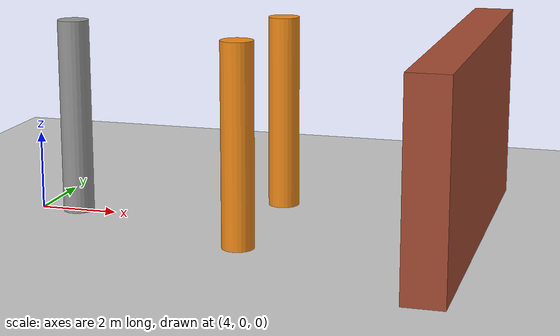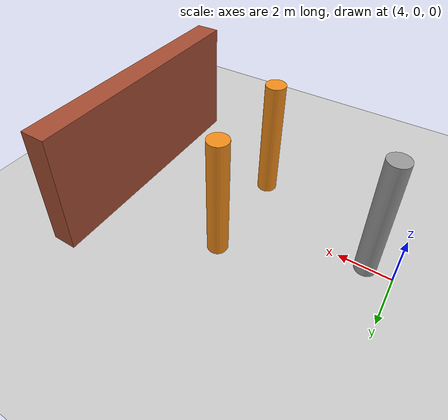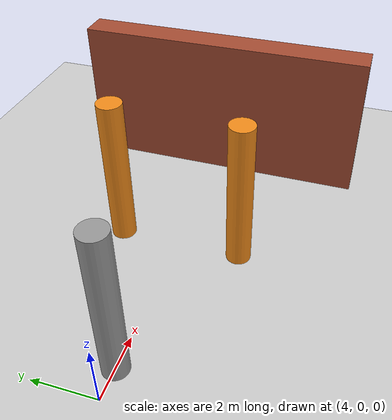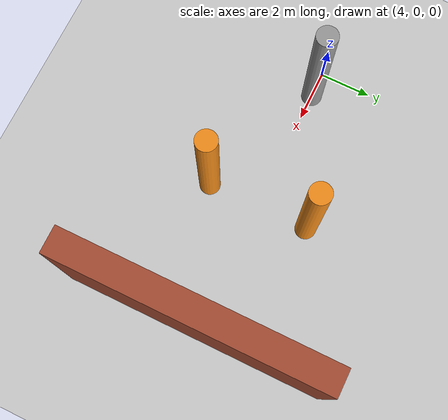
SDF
<?xml version="1.0" ?>
<sdf version="1.6">
  <world name="payload_obstacle_course">
    <!-- Scene settings: crisp lighting with no shadow aliasing or grid artifacts -->
    <scene>
      <ambient>0.6 0.6 0.6 1</ambient>
      <background>0.7 0.7 0.7 1</background>
      <shadows>false</shadows>
      <grid>false</grid>
    </scene>

    <!-- Global light source -->
    <include>
      <uri>model://sun</uri>
    </include>

    <!-- Ground & Asphalt runway plane (matches reference environment) -->
    <include>
      <uri>model://ground_plane</uri>
    </include>
    <include>
      <uri>model://asphalt_plane</uri>
    </include>

    <!-- Physics settings matched to PX4 SITL requirements (250Hz ODE) -->
    <physics name='default_physics' default='0' type='ode'>
      <gravity>0 0 -9.8066</gravity>
      <ode>
        <solver>
          <type>quick</type>
          <iters>10</iters>
          <sor>1.3</sor>
          <use_dynamic_moi_rescaling>0</use_dynamic_moi_rescaling>
        </solver>
        <constraints>
          <cfm>0</cfm>
          <erp>0.2</erp>
          <contact_max_correcting_vel>100</contact_max_correcting_vel>
          <contact_surface_layer>0.001</contact_surface_layer>
        </constraints>
      </ode>
      <max_step_size>0.004</max_step_size>
      <real_time_factor>1</real_time_factor>
      <real_time_update_rate>250</real_time_update_rate>
      <magnetic_field>6.0e-6 2.3e-5 -4.2e-5</magnetic_field>
    </physics>

    <!-- Obstacle 1: The First Pillar (Tests lateral avoidance) -->
    <model name="pillar_1">
      <pose>5 0 2.5 0 0 0</pose>
      <static>true</static>
      <link name="link">
        <collision name="collision">
          <geometry>
            <cylinder><radius>0.4</radius><length>5</length></cylinder>
          </geometry>
        </collision>
        <visual name="visual">
          <geometry>
            <cylinder><radius>0.4</radius><length>5</length></cylinder>
          </geometry>
          <material>
            <script>
              <uri>file://media/materials/scripts/gazebo.material</uri>
              <name>Gazebo/Grey</name>
            </script>
          </material>
        </visual>
      </link>
    </model>

    <!-- Obstacle 2 & 3: The Gate (Tests precision and payload swing control) -->
    <model name="gate_pillar_left">
      <pose>10 2.0 2.5 0 0 0</pose>
      <static>true</static>
      <link name="link">
        <collision name="collision">
          <geometry>
            <cylinder><radius>0.4</radius><length>5</length></cylinder>
          </geometry>
        </collision>
        <visual name="visual">
          <geometry>
            <cylinder><radius>0.4</radius><length>5</length></cylinder>
          </geometry>
          <material>
            <script>
              <uri>file://media/materials/scripts/gazebo.material</uri>
              <name>Gazebo/Orange</name>
            </script>
          </material>
        </visual>
      </link>
    </model>

    <model name="gate_pillar_right">
      <pose>10 -2.0 2.5 0 0 0</pose>
      <static>true</static>
      <link name="link">
        <collision name="collision">
          <geometry>
            <cylinder><radius>0.4</radius><length>5</length></cylinder>
          </geometry>
        </collision>
        <visual name="visual">
          <geometry>
            <cylinder><radius>0.4</radius><length>5</length></cylinder>
          </geometry>
          <material>
            <script>
              <uri>file://media/materials/scripts/gazebo.material</uri>
              <name>Gazebo/Orange</name>
            </script>
          </material>
        </visual>
      </link>
    </model>

    <!-- Obstacle 4: The Back Wall (Forces sharp deceleration / turn) -->
    <model name="back_wall">
      <pose>15 0 2.5 0 0 0</pose>
      <static>true</static>
      <link name="link">
        <collision name="collision">
          <geometry>
            <box><size>1 10 5</size></box>
          </geometry>
        </collision>
        <visual name="visual">
          <geometry>
            <box><size>1 10 5</size></box>
          </geometry>
          <material>
            <script>
              <uri>file://media/materials/scripts/gazebo.material</uri>
              <name>Gazebo/Bricks</name>
            </script>
          </material>
        </visual>
      </link>
    </model>

    <!-- Camera viewpoint optimized for recording the full course -->
    <gui fullscreen='0'>
      <camera name='user_camera'>
        <pose>-5.0 -4.0 4.5 0 0.20 0.31</pose>
        <view_controller>orbit</view_controller>
      </camera>
    </gui>

  </world>
</sdf>
